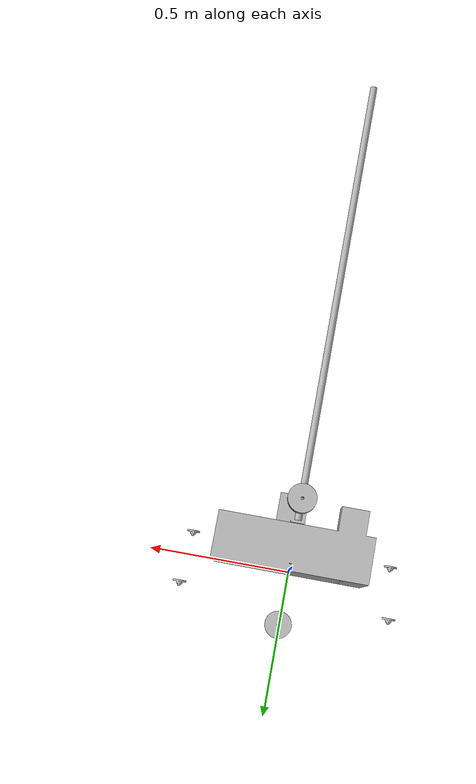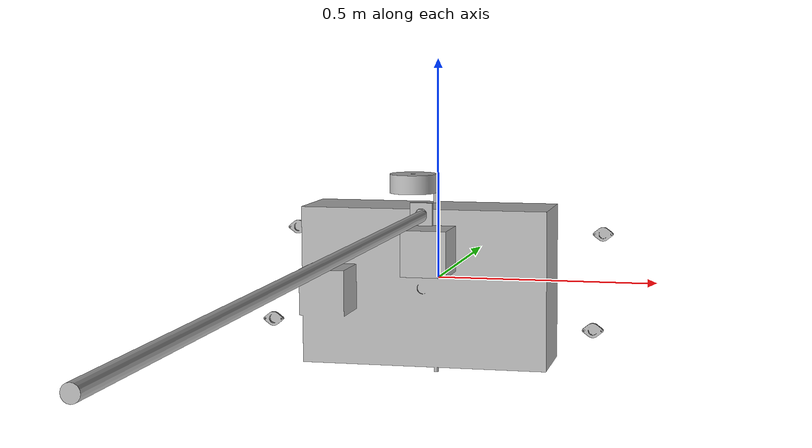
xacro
<?xml version="1.0" ?>
<robot name="final_urdf" xmlns:xacro="http://www.ros.org/wiki/xacro">

<xacro:include filename="$(find wh_bot)/description/materials.xacro" />

<link name="base_footprint"/>

<joint name="base_joint" type="fixed">
  <parent link="base_footprint"/>
  <child link="base_link"/>
  <origin xyz="0 0 0.0" rpy="0 0 0"/>
</joint>

<link name="base_link">
  <inertial>
    <origin xyz="-0.00158 0.0 0.0831" rpy="1.57 0 0"/>
    <mass value="249.98"/>
    <inertia ixx="3.129" iyy="6.917" izz="8.857" ixy="0.0" iyz="0.0" ixz="-0.0"/>
  </inertial>
  <visual>
    <origin xyz="0 0 0" rpy="1.57 0 0"/>
    <geometry>
      <mesh filename="file://$(find wh_bot)/meshes/tirth_bot/body_1.stl" scale="0.001 0.001 0.001"/>
    </geometry>
    <material name="silver"/>
  </visual>
  <collision>
    <origin xyz="0 0 0" rpy="1.57 0 0"/>
    <geometry>
      <mesh filename="file://$(find wh_bot)/meshes/tirth_bot/body_1.stl" scale="0.001 0.001 0.001"/>
    </geometry>
  </collision>
</link>

<link name="wheel1_1">
  <inertial>
    <origin xyz="0 0 0" rpy="0 0 0"/>
    <mass value="2.43"/>
    <inertia ixx="0.0018" iyy="0.0018" izz="0.003" ixy="0" iyz="0" ixz="0"/>
  </inertial>
  <visual>
    <origin xyz="0 0 0" rpy="1.57 0 0"/>
    <geometry>
      <mesh filename="file://$(find wh_bot)/meshes/tirth_bot/wheel1_1.stl" scale="0.001 0.001 0.001"/>
    </geometry>
    <material name="silver"/>
  </visual>
  <collision>
    <origin xyz="0 0 0" rpy="1.57 0 0"/>
    <geometry>
      <mesh filename="file://$(find wh_bot)/meshes/tirth_bot/wheel1_1.stl" scale="0.001 0.001 0.001"/>
    </geometry>
  </collision>
</link>

<link name="wheel2_1">
  <inertial>
    <origin xyz="0 0 0" rpy="0 0 0"/>
    <mass value="2.43"/>
    <inertia ixx="0.0018" iyy="0.0018" izz="0.003" ixy="0" iyz="0" ixz="0"/>
  </inertial>
  <visual>
    <origin xyz="0 0 0" rpy="1.57 0 0"/>
    <geometry>
      <mesh filename="file://$(find wh_bot)/meshes/tirth_bot/wheel2_1.stl" scale="0.001 0.001 0.001"/>
    </geometry>
    <material name="silver"/>
  </visual>
  <collision>
    <origin xyz="0 0 0" rpy="1.57 0 0"/>
    <geometry>
      <mesh filename="file://$(find wh_bot)/meshes/tirth_bot/wheel2_1.stl" scale="0.001 0.001 0.001"/>
    </geometry>
  </collision>
</link>

<link name="mount_rod_1">
  <visual>
    <origin xyz="0 0 0" rpy="1.57 0 0"/>
    <geometry>
      <mesh filename="file://$(find wh_bot)/meshes/tirth_bot/mount_rod_1.stl" scale="0.001 0.001 0.001"/>
    </geometry>
    <material name="silver"/>
  </visual>
  <collision>
    <origin xyz="0 0 0" rpy="1.57 0 0"/>
    <geometry>
      <mesh filename="file://$(find wh_bot)/meshes/tirth_bot/mount_rod_1.stl" scale="0.001 0.001 0.001"/>
    </geometry>
  </collision>
</link>

<link name="camera_mount_1">
  <visual>
    <origin xyz="0 0 0" rpy="1.57 0 0"/>
    <geometry>
      <mesh filename="file://$(find wh_bot)/meshes/tirth_bot/camera_mount_1.stl" scale="0.001 0.001 0.001"/>
    </geometry>
    <material name="silver"/>
  </visual>
  <collision>
    <origin xyz="0 0 0" rpy="1.57 0 0"/>
    <geometry>
      <mesh filename="file://$(find wh_bot)/meshes/tirth_bot/camera_mount_1.stl" scale="0.001 0.001 0.001"/>
    </geometry>
  </collision>
</link>

<link name="castor_wheel_1_1">
  <visual>
    <origin xyz="0 0 0" rpy="1.57 0 0"/>
    <geometry>
      <mesh filename="file://$(find wh_bot)/meshes/tirth_bot/castor_wheel_1_1.stl" scale="0.001 0.001 0.001"/>
    </geometry>
    <material name="silver"/>
  </visual>
  <collision>
    <origin xyz="0 0 0" rpy="1.57 0 0"/>
    <geometry>
      <mesh filename="file://$(find wh_bot)/meshes/tirth_bot/castor_wheel_1_1.stl" scale="0.001 0.001 0.001"/>
    </geometry>
  </collision>
</link>

<link name="castor_wheel_2_1">
  <visual>
    <origin xyz="0 0 0" rpy="1.57 0 0"/>
    <geometry>
      <mesh filename="file://$(find wh_bot)/meshes/tirth_bot/castor_wheel_2_1.stl" scale="0.001 0.001 0.001"/>
    </geometry>
    <material name="silver"/>
  </visual>
  <collision>
    <origin xyz="0 0 0" rpy="1.57 0 0"/>
    <geometry>
      <mesh filename="file://$(find wh_bot)/meshes/tirth_bot/castor_wheel_2_1.stl" scale="0.001 0.001 0.001"/>
    </geometry>
  </collision>
</link>

<link name="castor_wheel_3_1">
  <visual>
    <origin xyz="0 0 0" rpy="1.57 0 0"/>
    <geometry>
      <mesh filename="file://$(find wh_bot)/meshes/tirth_bot/castor_wheel_3_1.stl" scale="0.001 0.001 0.001"/>
    </geometry>
    <material name="silver"/>
  </visual>
  <collision>
    <origin xyz="0 0 0" rpy="1.57 0 0"/>
    <geometry>
      <mesh filename="file://$(find wh_bot)/meshes/tirth_bot/castor_wheel_3_1.stl" scale="0.001 0.001 0.001"/>
    </geometry>
  </collision>
</link>

<link name="castor_wheel_4_1">
  <visual>
    <origin xyz="0 0 0" rpy="1.57 0 0"/>
    <geometry>
      <mesh filename="file://$(find wh_bot)/meshes/tirth_bot/castor_wheel_4_1.stl" scale="0.001 0.001 0.001"/>
    </geometry>
    <material name="silver"/>
  </visual>
  <collision>
    <origin xyz="0 0 0" rpy="1.57 0 0"/>
    <geometry>
      <mesh filename="file://$(find wh_bot)/meshes/tirth_bot/castor_wheel_4_1.stl" scale="0.001 0.001 0.001"/>
    </geometry>
  </collision>
</link>

<joint name="revolute_1" type="continuous">
  <origin xyz="0.0 0.215 0.029" rpy="0 0 0"/>
  <parent link="base_link"/>
  <child link="wheel1_1"/>
  <axis xyz="0.0 1.0 0.0"/>
</joint>

<joint name="revolute_2" type="continuous">
  <origin xyz="0.0 -0.215 0.029" rpy="0 0 0"/>
  <parent link="base_link"/>
  <child link="wheel2_1"/>
  <axis xyz="0.0 1.0 0.0"/>
</joint>

<joint name="rigid_1" type="fixed">
  <origin xyz="0.0 0.0 0.159" rpy="0 0 0"/>
  <parent link="base_link"/>
  <child link="mount_rod_1"/>
</joint>

<joint name="joint_lift_2" type="prismatic">
  <origin xyz="0.0 0.0 0.164" rpy="0 0 0"/>
  <parent link="base_link"/>
  <child link="camera_mount_1"/>
  <axis xyz="0.0 0.0 1.0"/>
  <limit upper="0.0" lower="-1.63" effort="100" velocity="100"/>
</joint>

<joint name="rigid_2" type="fixed">
  <origin xyz="0.1839 -0.0945 0.0" rpy="0 0 0"/>
  <parent link="base_link"/>
  <child link="castor_wheel_1_1"/>
</joint>

<joint name="rigid_3" type="fixed">
  <origin xyz="-0.1839 -0.0945 0.0" rpy="0 0 0"/>
  <parent link="base_link"/>
  <child link="castor_wheel_2_1"/>
</joint>

<joint name="rigid_4" type="fixed">
  <origin xyz="0.1839 0.0945 0.0" rpy="0 0 0"/>
  <parent link="base_link"/>
  <child link="castor_wheel_3_1"/>
</joint>

<joint name="rigid_5" type="fixed">
  <origin xyz="-0.1839 0.0945 0.0" rpy="0 0 0"/>
  <parent link="base_link"/>
  <child link="castor_wheel_4_1"/>
</joint>

</robot>

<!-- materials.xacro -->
<robot xmlns:xacro="http://www.ros.org/wiki/xacro" name="hv_bot">

    <material name="black">
        <color rgba="0.0 0.0 0.0 1.0"/>
    </material>

    <material name="blue">
        <color rgba="0.0 0.0 0.8 1.0"/>
    </material>

    <material name="green">
        <color rgba="0.0 0.8 0.0 1.0"/>
    </material>

    <material name="yellow">
        <color rgba="1.0 1.0 0.0 1.0"/>
    </material>

    <material name="dark_grey">
        <color rgba="0.2 0.2 0.2 1.0"/>
    </material>

    <material name="orange">
        <color rgba="${255/255} ${108/255} ${10/255} 1.0"/>
    </material>

    <material name="brown">
        <color rgba="${139/255} ${69/255} ${19/255} 1.0"/>
    </material>

    <material name="red">
        <color rgba="0.8 0.0 0.0 1.0"/>
    </material>

    <material name="turquoise">
        <color rgba="${64/255} ${224/255} ${208/255} 1.0"/>
    </material>

    <material name="purple">
        <color rgba="${128/255} ${0/255} ${128/255} 1.0"/>
    </material>

    <material name="white">
        <color rgba="1.0 1.0 1.0 1.0"/>
    </material>

    <material name="aluminium">
        <color rgba="0.5 0.5 0.5 1"/>
    </material>

    <material name="plastic">
        <color rgba="0.1 0.1 0.1 1"/>
    </material>

    <material name="silver">
  <color rgba="0.700 0.700 0.700 1.000"/>
</material>

</robot>
